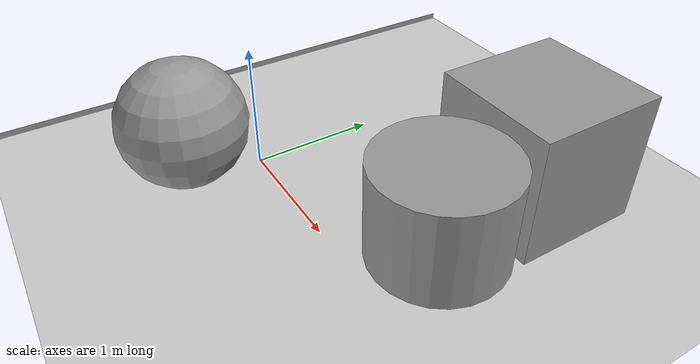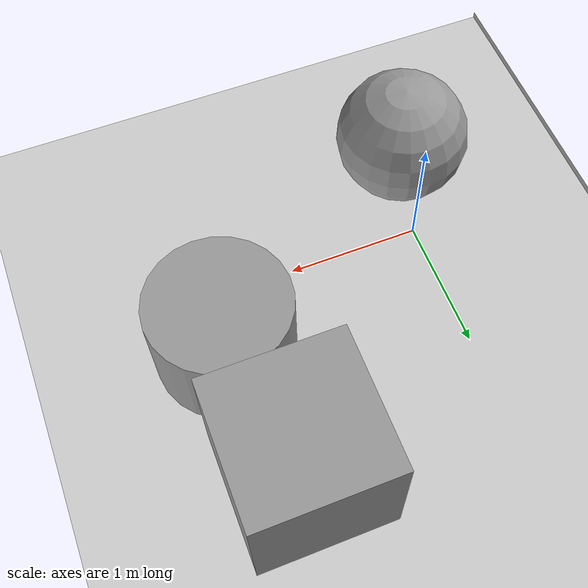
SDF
<sdf version="1.6">
 <world name="default">
  <light name="sun" type="directional">
   <pose>0 0 10 0 -0 0</pose>
   <diffuse>0.8 0.8 0.8 1</diffuse>
   <specular>0.2 0.2 0.2 1</specular>
   <attenuation>
    <range>1000</range>
    <constant>0.9</constant>
    <linear>0.01</linear>
    <quadratic>0.001</quadratic>
   </attenuation>
   <direction>-0.5 0.1 -0.9</direction>
  </light>
  <model name="ground_plane">
   <static>1</static>
   <link name="link">
    <collision name="collision">
     <geometry><plane><normal>0 0 1</normal><size>100 100</size></plane></geometry>
     <surface>
      <contact><collide_bitmask>65535</collide_bitmask></contact>
      <friction><ode><mu>100</mu><mu2>50</mu2></ode></friction>
     </surface>
    </collision>
    <visual name="visual">
     <cast_shadows>0</cast_shadows>
     <geometry><plane><normal>0 0 1</normal><size>100 100</size></plane></geometry>
     <material>
      <script><uri>file://media/materials/scripts/gazebo.material</uri><name>Gazebo/Grey</name></script>
     </material>
    </visual>
   </link>
  </model>
  <gravity>0 0 -9.8</gravity>
  <magnetic_field>6e-06 2.3e-05 -4.2e-05</magnetic_field>
  <atmosphere type="adiabatic"/>
  <physics name="default_physics" default="0" type="ode">
   <max_step_size>0.001</max_step_size>
   <real_time_factor>1</real_time_factor>
   <real_time_update_rate>1000</real_time_update_rate>
  </physics>
  <scene><ambient>0.4 0.4 0.4 1</ambient><background>0.7 0.7 0.7 1</background><shadows>1</shadows></scene>
  <audio><device>default</device></audio>
  <spherical_coordinates>
   <surface_model>EARTH_WGS84</surface_model>
   <latitude_deg>0</latitude_deg>
   <longitude_deg>0</longitude_deg>
   <elevation>0</elevation>
   <heading_deg>0</heading_deg>
  </spherical_coordinates>
  <model name="unit_box">
   <pose>1.49986 1.51629 0.5 0 -0 0.000863</pose>
   <link name="link">
    <inertial>
     <mass>1</mass>
     <inertia>
      <ixx>0.166667</ixx>
      <ixy>0</ixy>
      <ixz>0</ixz>
      <iyy>0.166667</iyy>
      <iyz>0</iyz>
      <izz>0.166667</izz>
     </inertia>
    </inertial>
    <collision name="collision"><geometry><box><size>1 1 1</size></box></geometry></collision>
    <visual name="visual">
     <geometry><box><size>1 1 1</size></box></geometry>
     <material>
      <script><name>Gazebo/Grey</name><uri>file://media/materials/scripts/gazebo.material</uri></script>
     </material>
    </visual>
   </link>
  </model>
  <model name="unit_sphere">
   <pose>-0.104581 -0.541784 0.49999 0 -0 0</pose>
   <link name="link">
    <inertial>
     <mass>1</mass>
     <inertia><ixx>0.1</ixx><ixy>0</ixy><ixz>0</ixz><iyy>0.1</iyy><iyz>0</iyz><izz>0.1</izz></inertia>
    </inertial>
    <collision name="collision"><geometry><sphere><radius>0.5</radius></sphere></geometry></collision>
    <visual name="visual">
     <geometry><sphere><radius>0.5</radius></sphere></geometry>
     <material>
      <script><name>Gazebo/Grey</name><uri>file://media/materials/scripts/gazebo.material</uri></script>
     </material>
    </visual>
   </link>
  </model>
  <model name="unit_cylinder">
   <pose>1.68322 0.51624 0.500001 0 -0 2.65069</pose>
   <link name="link">
    <inertial>
     <mass>1</mass>
     <inertia><ixx>0.145833</ixx><ixy>0</ixy><ixz>0</ixz><iyy>0.145833</iyy><iyz>0</iyz><izz>0.125</izz></inertia>
    </inertial>
    <collision name="collision">
     <geometry><cylinder><radius>0.5</radius><length>0.740653</length></cylinder></geometry>
    </collision>
    <visual name="visual">
     <geometry><cylinder><radius>0.5</radius><length>0.740653</length></cylinder></geometry>
     <material>
      <script><name>Gazebo/Grey</name><uri>file://media/materials/scripts/gazebo.material</uri></script>
     </material>
    </visual>
   </link>
  </model>
  <light name="user_point_light_0" type="point">
   <pose>2.9191 -1.96827 1 0 -0 0</pose>
   <diffuse>0.5 0.5 0.5 1</diffuse>
   <specular>0.1 0.1 0.1 1</specular>
   <attenuation>
    <range>20</range>
    <constant>0.5</constant>
    <linear>0.01</linear>
    <quadratic>0.001</quadratic>
   </attenuation>
   <cast_shadows>0</cast_shadows>
   <direction>0 0 -1</direction>
  </light>
  <light name="user_point_light_1" type="point">
   <pose>-1.37729 -1.59393 1 0 -0 0</pose>
   <diffuse>0.5 0.5 0.5 1</diffuse>
   <specular>0.1 0.1 0.1 1</specular>
   <attenuation>
    <range>20</range>
    <constant>0.5</constant>
    <linear>0.01</linear>
    <quadratic>0.001</quadratic>
   </attenuation>
   <cast_shadows>0</cast_shadows>
   <direction>0 0 -1</direction>
  </light>
  <light name="user_point_light_2" type="point">
   <pose>1.14161 6.33365 1 0 -0 0</pose>
   <diffuse>0.5 0.5 0.5 1</diffuse>
   <specular>0.1 0.1 0.1 1</specular>
   <attenuation>
    <range>20</range>
    <constant>0.5</constant>
    <linear>0.01</linear>
    <quadratic>0.001</quadratic>
   </attenuation>
   <cast_shadows>0</cast_shadows>
   <direction>0 0 -1</direction>
  </light>
  <light name="user_directional_light_0" type="directional">
   <pose>1.93367 -4.11975 1 0 -0 0</pose>
   <diffuse>0.5 0.5 0.5 1</diffuse>
   <specular>0.1 0.1 0.1 1</specular>
   <direction>0.1 0.1 -0.9</direction>
   <attenuation>
    <range>20</range>
    <constant>0.5</constant>
    <linear>0.01</linear>
    <quadratic>0.001</quadratic>
   </attenuation>
  </light>
  <model name="ground_plane_0">
   <static>1</static>
   <link name="link">
    <collision name="collision">
     <geometry><plane><normal>0 0 1</normal><size>100 100</size></plane></geometry>
     <surface>
      <contact><collide_bitmask>65535</collide_bitmask></contact>
      <friction><ode><mu>100</mu><mu2>50</mu2></ode></friction>
     </surface>
    </collision>
    <visual name="visual">
     <cast_shadows>0</cast_shadows>
     <geometry><plane><normal>0 0 1</normal><size>100 100</size></plane></geometry>
     <material>
      <script><uri>file://media/materials/scripts/gazebo.material</uri><name>Gazebo/Grey</name></script>
     </material>
    </visual>
   </link>
   <pose>-61.9101 27.7347 0 0 -0 0</pose>
  </model>
 </world>
</sdf>
